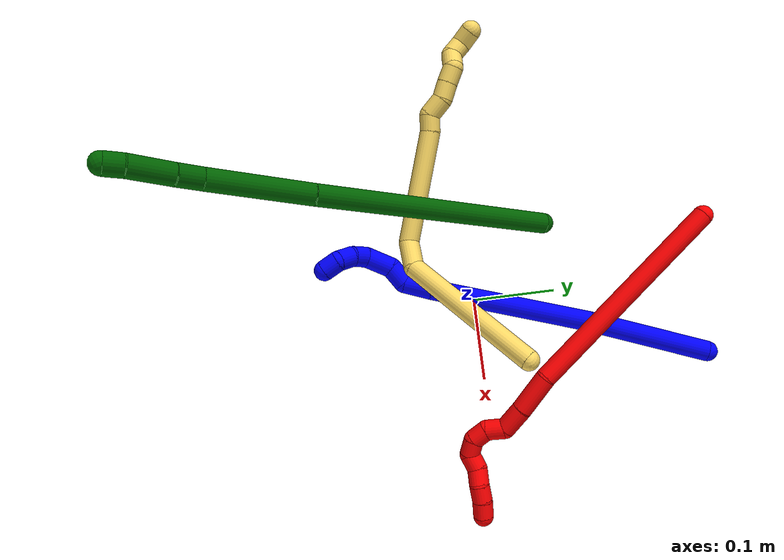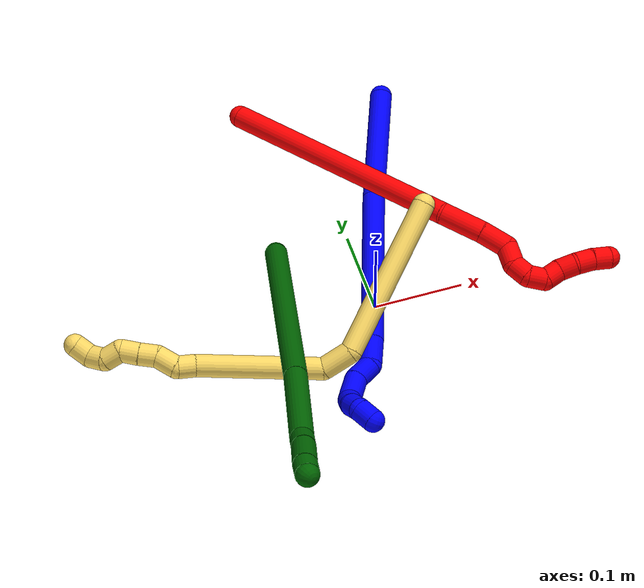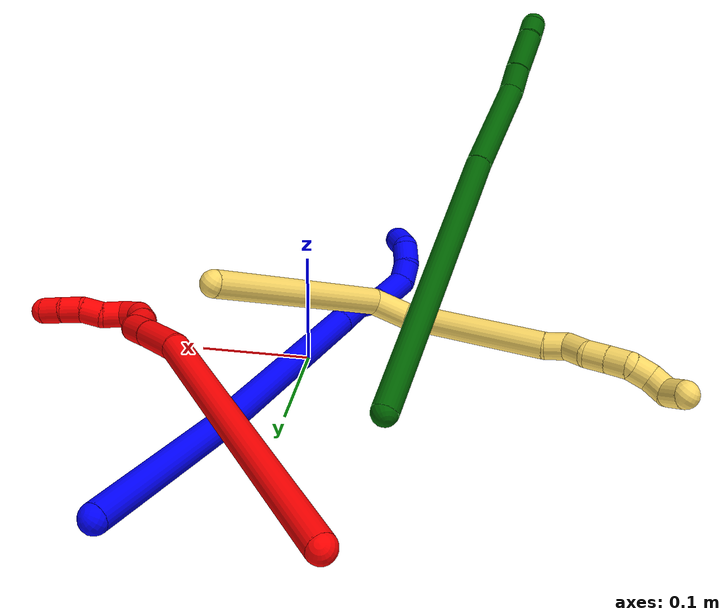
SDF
<sdf version="1.7">
 <world name="default">
  <model name="1">
   <static>0</static>
   <link name="1">
    <collision name="collision-cylinder-e_1_1_4">
     <pose>-0.018529 -0.052572 -0.048535 2.31629 -0.253398 -0.5663</pose>
     <geometry><cylinder><radius>0.0125</radius><length>0.147822</length></cylinder></geometry>
     <surface>
      <friction><ode><mu>1.16</mu><mu2>1.16</mu2><slip1>0</slip1><slip2>0</slip2></ode></friction>
      <contact><ode><kp>1e+06</kp><kd>1</kd><max_vel>0</max_vel><min_depth>0.001</min_depth></ode></contact>
     </surface>
    </collision>
    <visual name="visual-cylinder-e_1_1_4">
     <pose>-0.018529 -0.052572 -0.048535 2.31629 -0.253398 -0.5663</pose>
     <geometry><cylinder><radius>0.0125</radius><length>0.147822</length></cylinder></geometry>
     <material><ambient>0 0 1 1</ambient></material>
    </visual>
    <collision name="collision-cylinder-e_2_4_5">
     <pose>-0.060913 -0.180215 -0.158418 2.25592 -0.241266 -0.5005</pose>
     <geometry><cylinder><radius>0.0125</radius><length>0.199682</length></cylinder></geometry>
     <surface>
      <friction><ode><mu>1.16</mu><mu2>1.16</mu2><slip1>0</slip1><slip2>0</slip2></ode></friction>
      <contact><ode><kp>1e+06</kp><kd>1</kd><max_vel>0</max_vel><min_depth>0.001</min_depth></ode></contact>
     </surface>
    </collision>
    <visual name="visual-cylinder-e_2_4_5">
     <pose>-0.060913 -0.180215 -0.158418 2.25592 -0.241266 -0.5005</pose>
     <geometry><cylinder><radius>0.0125</radius><length>0.199682</length></cylinder></geometry>
     <material><ambient>0 0 1 1</ambient></material>
    </visual>
    <collision name="collision-cylinder-e_3_5_6">
     <pose>-0.09048 -0.268298 -0.229603 2.2182 -0.336804 -0.658503</pose>
     <geometry><cylinder><radius>0.0125</radius><length>0.034566</length></cylinder></geometry>
     <surface>
      <friction><ode><mu>1.16</mu><mu2>1.16</mu2><slip1>0</slip1><slip2>0</slip2></ode></friction>
      <contact><ode><kp>1e+06</kp><kd>1</kd><max_vel>0</max_vel><min_depth>0.001</min_depth></ode></contact>
     </surface>
    </collision>
    <visual name="visual-cylinder-e_3_5_6">
     <pose>-0.09048 -0.268298 -0.229603 2.2182 -0.336804 -0.658503</pose>
     <geometry><cylinder><radius>0.0125</radius><length>0.034566</length></cylinder></geometry>
     <material><ambient>0 0 1 1</ambient></material>
    </visual>
    <collision name="collision-cylinder-e_4_6_7">
     <pose>-0.104538 -0.284527 -0.247746 2.77196 -0.75288 -2.25806</pose>
     <geometry><cylinder><radius>0.0125</radius><length>0.024413</length></cylinder></geometry>
     <surface>
      <friction><ode><mu>1.16</mu><mu2>1.16</mu2><slip1>0</slip1><slip2>0</slip2></ode></friction>
      <contact><ode><kp>1e+06</kp><kd>1</kd><max_vel>0</max_vel><min_depth>0.001</min_depth></ode></contact>
     </surface>
    </collision>
    <visual name="visual-cylinder-e_4_6_7">
     <pose>-0.104538 -0.284527 -0.247746 2.77196 -0.75288 -2.25806</pose>
     <geometry><cylinder><radius>0.0125</radius><length>0.024413</length></cylinder></geometry>
     <material><ambient>0 0 1 1</ambient></material>
    </visual>
    <collision name="collision-cylinder-e_5_7_8">
     <pose>-0.121306 -0.29919 -0.264925 2.23027 -0.52679 -1.00608</pose>
     <geometry><cylinder><radius>0.0125</radius><length>0.033505</length></cylinder></geometry>
     <surface>
      <friction><ode><mu>1.16</mu><mu2>1.16</mu2><slip1>0</slip1><slip2>0</slip2></ode></friction>
      <contact><ode><kp>1e+06</kp><kd>1</kd><max_vel>0</max_vel><min_depth>0.001</min_depth></ode></contact>
     </surface>
    </collision>
    <visual name="visual-cylinder-e_5_7_8">
     <pose>-0.121306 -0.29919 -0.264925 2.23027 -0.52679 -1.00608</pose>
     <geometry><cylinder><radius>0.0125</radius><length>0.033505</length></cylinder></geometry>
     <material><ambient>0 0 1 1</ambient></material>
    </visual>
    <collision name="collision-cylinder-e_6_8_9">
     <pose>-0.134752 -0.319279 -0.273424 1.52764 -0.526018 -0.504743</pose>
     <geometry><cylinder><radius>0.0125</radius><length>0.02001</length></cylinder></geometry>
     <surface>
      <friction><ode><mu>1.16</mu><mu2>1.16</mu2><slip1>0</slip1><slip2>0</slip2></ode></friction>
      <contact><ode><kp>1e+06</kp><kd>1</kd><max_vel>0</max_vel><min_depth>0.001</min_depth></ode></contact>
     </surface>
    </collision>
    <visual name="visual-cylinder-e_6_8_9">
     <pose>-0.134752 -0.319279 -0.273424 1.52764 -0.526018 -0.504743</pose>
     <geometry><cylinder><radius>0.0125</radius><length>0.02001</length></cylinder></geometry>
     <material><ambient>0 0 1 1</ambient></material>
    </visual>
    <collision name="collision-cylinder-e_7_9_10">
     <pose>-0.141844 -0.337614 -0.271698 1.43206 -0.208351 -0.181439</pose>
     <geometry><cylinder><radius>0.0125</radius><length>0.020001</length></cylinder></geometry>
     <surface>
      <friction><ode><mu>1.16</mu><mu2>1.16</mu2><slip1>0</slip1><slip2>0</slip2></ode></friction>
      <contact><ode><kp>1e+06</kp><kd>1</kd><max_vel>0</max_vel><min_depth>0.001</min_depth></ode></contact>
     </surface>
    </collision>
    <visual name="visual-cylinder-e_7_9_10">
     <pose>-0.141844 -0.337614 -0.271698 1.43206 -0.208351 -0.181439</pose>
     <geometry><cylinder><radius>0.0125</radius><length>0.020001</length></cylinder></geometry>
     <material><ambient>0 0 1 1</ambient></material>
    </visual>
    <collision name="collision-cylinder-e_8_10_2">
     <pose>-0.140117 -0.356422 -0.271916 1.74142 0.38936 0.459834</pose>
     <geometry><cylinder><radius>0.0125</radius><length>0.020001</length></cylinder></geometry>
     <surface>
      <friction><ode><mu>1.16</mu><mu2>1.16</mu2><slip1>0</slip1><slip2>0</slip2></ode></friction>
      <contact><ode><kp>1e+06</kp><kd>1</kd><max_vel>0</max_vel><min_depth>0.001</min_depth></ode></contact>
     </surface>
    </collision>
    <visual name="visual-cylinder-e_8_10_2">
     <pose>-0.140117 -0.356422 -0.271916 1.74142 0.38936 0.459834</pose>
     <geometry><cylinder><radius>0.0125</radius><length>0.020001</length></cylinder></geometry>
     <material><ambient>0 0 1 1</ambient></material>
    </visual>
    <collision name="collision-sphere-2">
     <pose>-0.136321 -0.36554 -0.273487 0 -0 0</pose>
     <geometry><sphere><radius>0.0125</radius></sphere></geometry>
     <surface>
      <friction><ode><mu>1.16</mu><mu2>1.16</mu2><slip1>0</slip1><slip2>0</slip2></ode></friction>
      <contact><ode><kp>1e+06</kp><kd>1</kd><max_vel>0</max_vel><min_depth>0.001</min_depth></ode></contact>
     </surface>
    </collision>
    <visual name="visual-sphere-2">
     <pose>-0.136321 -0.36554 -0.273487 0 -0 0</pose>
     <geometry><sphere><radius>0.0125</radius></sphere></geometry>
     <material><ambient>0 0 1 1</ambient></material>
    </visual>
    <collision name="collision-sphere-10">
     <pose>-0.143913 -0.347304 -0.270345 0 -0 0</pose>
     <geometry><sphere><radius>0.0125</radius></sphere></geometry>
     <surface>
      <friction><ode><mu>1.16</mu><mu2>1.16</mu2><slip1>0</slip1><slip2>0</slip2></ode></friction>
      <contact><ode><kp>1e+06</kp><kd>1</kd><max_vel>0</max_vel><min_depth>0.001</min_depth></ode></contact>
     </surface>
    </collision>
    <visual name="visual-sphere-10">
     <pose>-0.143913 -0.347304 -0.270345 0 -0 0</pose>
     <geometry><sphere><radius>0.0125</radius></sphere></geometry>
     <material><ambient>0 0 1 1</ambient></material>
    </visual>
    <collision name="collision-sphere-9">
     <pose>-0.139776 -0.327924 -0.273051 0 -0 0</pose>
     <geometry><sphere><radius>0.0125</radius></sphere></geometry>
     <surface>
      <friction><ode><mu>1.16</mu><mu2>1.16</mu2><slip1>0</slip1><slip2>0</slip2></ode></friction>
      <contact><ode><kp>1e+06</kp><kd>1</kd><max_vel>0</max_vel><min_depth>0.001</min_depth></ode></contact>
     </surface>
    </collision>
    <visual name="visual-sphere-9">
     <pose>-0.139776 -0.327924 -0.273051 0 -0 0</pose>
     <geometry><sphere><radius>0.0125</radius></sphere></geometry>
     <material><ambient>0 0 1 1</ambient></material>
    </visual>
    <collision name="collision-sphere-4">
     <pose>-0.037058 -0.105144 -0.097071 0 -0 0</pose>
     <geometry><sphere><radius>0.0125</radius></sphere></geometry>
     <surface>
      <friction><ode><mu>1.16</mu><mu2>1.16</mu2><slip1>0</slip1><slip2>0</slip2></ode></friction>
      <contact><ode><kp>1e+06</kp><kd>1</kd><max_vel>0</max_vel><min_depth>0.001</min_depth></ode></contact>
     </surface>
    </collision>
    <visual name="visual-sphere-4">
     <pose>-0.037058 -0.105144 -0.097071 0 -0 0</pose>
     <geometry><sphere><radius>0.0125</radius></sphere></geometry>
     <material><ambient>0 0 1 1</ambient></material>
    </visual>
    <collision name="collision-sphere-1">
     <geometry><sphere><radius>0.0125</radius></sphere></geometry>
     <surface>
      <friction><ode><mu>1.16</mu><mu2>1.16</mu2><slip1>0</slip1><slip2>0</slip2></ode></friction>
      <contact><ode><kp>1e+06</kp><kd>1</kd><max_vel>0</max_vel><min_depth>0.001</min_depth></ode></contact>
     </surface>
    </collision>
    <visual name="visual-sphere-1">
     <geometry><sphere><radius>0.0125</radius></sphere></geometry>
     <material><ambient>0 0 1 1</ambient></material>
    </visual>
    <collision name="collision-sphere-8">
     <pose>-0.129729 -0.310635 -0.273797 0 -0 0</pose>
     <geometry><sphere><radius>0.0125</radius></sphere></geometry>
     <surface>
      <friction><ode><mu>1.16</mu><mu2>1.16</mu2><slip1>0</slip1><slip2>0</slip2></ode></friction>
      <contact><ode><kp>1e+06</kp><kd>1</kd><max_vel>0</max_vel><min_depth>0.001</min_depth></ode></contact>
     </surface>
    </collision>
    <visual name="visual-sphere-8">
     <pose>-0.129729 -0.310635 -0.273797 0 -0 0</pose>
     <geometry><sphere><radius>0.0125</radius></sphere></geometry>
     <material><ambient>0 0 1 1</ambient></material>
    </visual>
    <collision name="collision-sphere-5">
     <pose>-0.084769 -0.255287 -0.219765 0 -0 0</pose>
     <geometry><sphere><radius>0.0125</radius></sphere></geometry>
     <surface>
      <friction><ode><mu>1.16</mu><mu2>1.16</mu2><slip1>0</slip1><slip2>0</slip2></ode></friction>
      <contact><ode><kp>1e+06</kp><kd>1</kd><max_vel>0</max_vel><min_depth>0.001</min_depth></ode></contact>
     </surface>
    </collision>
    <visual name="visual-sphere-5">
     <pose>-0.084769 -0.255287 -0.219765 0 -0 0</pose>
     <geometry><sphere><radius>0.0125</radius></sphere></geometry>
     <material><ambient>0 0 1 1</ambient></material>
    </visual>
    <collision name="collision-sphere-6">
     <pose>-0.096192 -0.28131 -0.239441 0 -0 0</pose>
     <geometry><sphere><radius>0.0125</radius></sphere></geometry>
     <surface>
      <friction><ode><mu>1.16</mu><mu2>1.16</mu2><slip1>0</slip1><slip2>0</slip2></ode></friction>
      <contact><ode><kp>1e+06</kp><kd>1</kd><max_vel>0</max_vel><min_depth>0.001</min_depth></ode></contact>
     </surface>
    </collision>
    <visual name="visual-sphere-6">
     <pose>-0.096192 -0.28131 -0.239441 0 -0 0</pose>
     <geometry><sphere><radius>0.0125</radius></sphere></geometry>
     <material><ambient>0 0 1 1</ambient></material>
    </visual>
    <collision name="collision-sphere-7">
     <pose>-0.112884 -0.287745 -0.256052 0 -0 0</pose>
     <geometry><sphere><radius>0.0125</radius></sphere></geometry>
     <surface>
      <friction><ode><mu>1.16</mu><mu2>1.16</mu2><slip1>0</slip1><slip2>0</slip2></ode></friction>
      <contact><ode><kp>1e+06</kp><kd>1</kd><max_vel>0</max_vel><min_depth>0.001</min_depth></ode></contact>
     </surface>
    </collision>
    <visual name="visual-sphere-7">
     <pose>-0.112884 -0.287745 -0.256052 0 -0 0</pose>
     <geometry><sphere><radius>0.0125</radius></sphere></geometry>
     <material><ambient>0 0 1 1</ambient></material>
    </visual>
    <inertial>
     <pose>-0.065964 -0.180544 -0.156026 0 -0 0</pose>
     <mass>0.5</mass>
     <inertia>
      <ixx>0.000331</ixx>
      <ixy>0</ixy>
      <ixz>0</ixz>
      <iyy>-0.000934</iyy>
      <iyz>0</iyz>
      <izz>0.000925</izz>
     </inertia>
    </inertial>
   </link>
   <pose>0.097172 0.275657 0.016848 -0.483097 0.684025 -0.010634</pose>
  </model>
  <model name="2">
   <static>0</static>
   <link name="2">
    <collision name="collision-cylinder-e_1_1_4">
     <pose>0.083787 -0.086686 -0.066794 2.22731 0.653432 1.20645</pose>
     <geometry><cylinder><radius>0.0125</radius><length>0.275653</length></cylinder></geometry>
     <surface>
      <friction><ode><mu>1.16</mu><mu2>1.16</mu2><slip1>0</slip1><slip2>0</slip2></ode></friction>
      <contact><ode><kp>1e+06</kp><kd>1</kd><max_vel>0</max_vel><min_depth>0.001</min_depth></ode></contact>
     </surface>
    </collision>
    <visual name="visual-cylinder-e_1_1_4">
     <pose>0.083787 -0.086686 -0.066794 2.22731 0.653432 1.20645</pose>
     <geometry><cylinder><radius>0.0125</radius><length>0.275653</length></cylinder></geometry>
     <material><ambient>1 0 0 1</ambient></material>
    </visual>
    <collision name="collision-cylinder-e_2_4_5">
     <pose>0.184751 -0.182997 -0.148008 2.55304 0.780758 1.87197</pose>
     <geometry><cylinder><radius>0.0125</radius><length>0.048812</length></cylinder></geometry>
     <surface>
      <friction><ode><mu>1.16</mu><mu2>1.16</mu2><slip1>0</slip1><slip2>0</slip2></ode></friction>
      <contact><ode><kp>1e+06</kp><kd>1</kd><max_vel>0</max_vel><min_depth>0.001</min_depth></ode></contact>
     </surface>
    </collision>
    <visual name="visual-cylinder-e_2_4_5">
     <pose>0.184751 -0.182997 -0.148008 2.55304 0.780758 1.87197</pose>
     <geometry><cylinder><radius>0.0125</radius><length>0.048812</length></cylinder></geometry>
     <material><ambient>1 0 0 1</ambient></material>
    </visual>
    <collision name="collision-cylinder-e_3_5_6">
     <pose>0.212409 -0.198506 -0.173131 2.6389 0.709194 1.92886</pose>
     <geometry><cylinder><radius>0.0125</radius><length>0.032186</length></cylinder></geometry>
     <surface>
      <friction><ode><mu>1.16</mu><mu2>1.16</mu2><slip1>0</slip1><slip2>0</slip2></ode></friction>
      <contact><ode><kp>1e+06</kp><kd>1</kd><max_vel>0</max_vel><min_depth>0.001</min_depth></ode></contact>
     </surface>
    </collision>
    <visual name="visual-cylinder-e_3_5_6">
     <pose>0.212409 -0.198506 -0.173131 2.6389 0.709194 1.92886</pose>
     <geometry><cylinder><radius>0.0125</radius><length>0.032186</length></cylinder></geometry>
     <material><ambient>1 0 0 1</ambient></material>
    </visual>
    <collision name="collision-cylinder-e_4_6_7">
     <pose>0.222633 -0.211726 -0.192777 2.45462 -0.022142 -0.06189</pose>
     <geometry><cylinder><radius>0.0125</radius><length>0.023141</length></cylinder></geometry>
     <surface>
      <friction><ode><mu>1.16</mu><mu2>1.16</mu2><slip1>0</slip1><slip2>0</slip2></ode></friction>
      <contact><ode><kp>1e+06</kp><kd>1</kd><max_vel>0</max_vel><min_depth>0.001</min_depth></ode></contact>
     </surface>
    </collision>
    <visual name="visual-cylinder-e_4_6_7">
     <pose>0.222633 -0.211726 -0.192777 2.45462 -0.022142 -0.06189</pose>
     <geometry><cylinder><radius>0.0125</radius><length>0.023141</length></cylinder></geometry>
     <material><ambient>1 0 0 1</ambient></material>
    </visual>
    <collision name="collision-cylinder-e_5_7_8">
     <pose>0.227323 -0.224412 -0.208685 2.48659 0.51304 1.31495</pose>
     <geometry><cylinder><radius>0.0125</radius><length>0.020157</length></cylinder></geometry>
     <surface>
      <friction><ode><mu>1.16</mu><mu2>1.16</mu2><slip1>0</slip1><slip2>0</slip2></ode></friction>
      <contact><ode><kp>1e+06</kp><kd>1</kd><max_vel>0</max_vel><min_depth>0.001</min_depth></ode></contact>
     </surface>
    </collision>
    <visual name="visual-cylinder-e_5_7_8">
     <pose>0.227323 -0.224412 -0.208685 2.48659 0.51304 1.31495</pose>
     <geometry><cylinder><radius>0.0125</radius><length>0.020157</length></cylinder></geometry>
     <material><ambient>1 0 0 1</ambient></material>
    </visual>
    <collision name="collision-cylinder-e_6_8_9">
     <pose>0.241085 -0.230886 -0.220245 2.90148 1.07805 2.74354</pose>
     <geometry><cylinder><radius>0.0125</radius><length>0.020009</length></cylinder></geometry>
     <surface>
      <friction><ode><mu>1.16</mu><mu2>1.16</mu2><slip1>0</slip1><slip2>0</slip2></ode></friction>
      <contact><ode><kp>1e+06</kp><kd>1</kd><max_vel>0</max_vel><min_depth>0.001</min_depth></ode></contact>
     </surface>
    </collision>
    <visual name="visual-cylinder-e_6_8_9">
     <pose>0.241085 -0.230886 -0.220245 2.90148 1.07805 2.74354</pose>
     <geometry><cylinder><radius>0.0125</radius><length>0.020009</length></cylinder></geometry>
     <material><ambient>1 0 0 1</ambient></material>
    </visual>
    <collision name="collision-cylinder-e_7_9_10">
     <pose>0.259322 -0.229255 -0.222914 -0.960619 1.22789 -0.703845</pose>
     <geometry><cylinder><radius>0.0125</radius><length>0.020011</length></cylinder></geometry>
     <surface>
      <friction><ode><mu>1.16</mu><mu2>1.16</mu2><slip1>0</slip1><slip2>0</slip2></ode></friction>
      <contact><ode><kp>1e+06</kp><kd>1</kd><max_vel>0</max_vel><min_depth>0.001</min_depth></ode></contact>
     </surface>
    </collision>
    <visual name="visual-cylinder-e_7_9_10">
     <pose>0.259322 -0.229255 -0.222914 -0.960619 1.22789 -0.703845</pose>
     <geometry><cylinder><radius>0.0125</radius><length>0.020011</length></cylinder></geometry>
     <material><ambient>1 0 0 1</ambient></material>
    </visual>
    <collision name="collision-cylinder-e_8_10_11">
     <pose>0.278666 -0.227477 -0.220031 0.797457 1.43368 0.703748</pose>
     <geometry><cylinder><radius>0.0125</radius><length>0.020029</length></cylinder></geometry>
     <surface>
      <friction><ode><mu>1.16</mu><mu2>1.16</mu2><slip1>0</slip1><slip2>0</slip2></ode></friction>
      <contact><ode><kp>1e+06</kp><kd>1</kd><max_vel>0</max_vel><min_depth>0.001</min_depth></ode></contact>
     </surface>
    </collision>
    <visual name="visual-cylinder-e_8_10_11">
     <pose>0.278666 -0.227477 -0.220031 0.797457 1.43368 0.703748</pose>
     <geometry><cylinder><radius>0.0125</radius><length>0.020029</length></cylinder></geometry>
     <material><ambient>1 0 0 1</ambient></material>
    </visual>
    <collision name="collision-cylinder-e_9_11_12">
     <pose>0.298477 -0.227161 -0.219778 -2.06811 1.4228 -1.93324</pose>
     <geometry><cylinder><radius>0.0125</radius><length>0.02</length></cylinder></geometry>
     <surface>
      <friction><ode><mu>1.16</mu><mu2>1.16</mu2><slip1>0</slip1><slip2>0</slip2></ode></friction>
      <contact><ode><kp>1e+06</kp><kd>1</kd><max_vel>0</max_vel><min_depth>0.001</min_depth></ode></contact>
     </surface>
    </collision>
    <visual name="visual-cylinder-e_9_11_12">
     <pose>0.298477 -0.227161 -0.219778 -2.06811 1.4228 -1.93324</pose>
     <geometry><cylinder><radius>0.0125</radius><length>0.02</length></cylinder></geometry>
     <material><ambient>1 0 0 1</ambient></material>
    </visual>
    <collision name="collision-cylinder-e_10_12_2">
     <pose>0.318089 -0.22498 -0.222654 -2.75467 1.33399 -2.65387</pose>
     <geometry><cylinder><radius>0.0125</radius><length>0.02</length></cylinder></geometry>
     <surface>
      <friction><ode><mu>1.16</mu><mu2>1.16</mu2><slip1>0</slip1><slip2>0</slip2></ode></friction>
      <contact><ode><kp>1e+06</kp><kd>1</kd><max_vel>0</max_vel><min_depth>0.001</min_depth></ode></contact>
     </surface>
    </collision>
    <visual name="visual-cylinder-e_10_12_2">
     <pose>0.318089 -0.22498 -0.222654 -2.75467 1.33399 -2.65387</pose>
     <geometry><cylinder><radius>0.0125</radius><length>0.02</length></cylinder></geometry>
     <material><ambient>1 0 0 1</ambient></material>
    </visual>
    <collision name="collision-sphere-2">
     <pose>0.32781 -0.224094 -0.224826 0 -0 0</pose>
     <geometry><sphere><radius>0.0125</radius></sphere></geometry>
     <surface>
      <friction><ode><mu>1.16</mu><mu2>1.16</mu2><slip1>0</slip1><slip2>0</slip2></ode></friction>
      <contact><ode><kp>1e+06</kp><kd>1</kd><max_vel>0</max_vel><min_depth>0.001</min_depth></ode></contact>
     </surface>
    </collision>
    <visual name="visual-sphere-2">
     <pose>0.32781 -0.224094 -0.224826 0 -0 0</pose>
     <geometry><sphere><radius>0.0125</radius></sphere></geometry>
     <material><ambient>1 0 0 1</ambient></material>
    </visual>
    <collision name="collision-sphere-12">
     <pose>0.308368 -0.225865 -0.220481 0 -0 0</pose>
     <geometry><sphere><radius>0.0125</radius></sphere></geometry>
     <surface>
      <friction><ode><mu>1.16</mu><mu2>1.16</mu2><slip1>0</slip1><slip2>0</slip2></ode></friction>
      <contact><ode><kp>1e+06</kp><kd>1</kd><max_vel>0</max_vel><min_depth>0.001</min_depth></ode></contact>
     </surface>
    </collision>
    <visual name="visual-sphere-12">
     <pose>0.308368 -0.225865 -0.220481 0 -0 0</pose>
     <geometry><sphere><radius>0.0125</radius></sphere></geometry>
     <material><ambient>1 0 0 1</ambient></material>
    </visual>
    <collision name="collision-sphere-11">
     <pose>0.288586 -0.228457 -0.219074 0 -0 0</pose>
     <geometry><sphere><radius>0.0125</radius></sphere></geometry>
     <surface>
      <friction><ode><mu>1.16</mu><mu2>1.16</mu2><slip1>0</slip1><slip2>0</slip2></ode></friction>
      <contact><ode><kp>1e+06</kp><kd>1</kd><max_vel>0</max_vel><min_depth>0.001</min_depth></ode></contact>
     </surface>
    </collision>
    <visual name="visual-sphere-11">
     <pose>0.288586 -0.228457 -0.219074 0 -0 0</pose>
     <geometry><sphere><radius>0.0125</radius></sphere></geometry>
     <material><ambient>1 0 0 1</ambient></material>
    </visual>
    <collision name="collision-sphere-10">
     <pose>0.268746 -0.226498 -0.220987 0 -0 0</pose>
     <geometry><sphere><radius>0.0125</radius></sphere></geometry>
     <surface>
      <friction><ode><mu>1.16</mu><mu2>1.16</mu2><slip1>0</slip1><slip2>0</slip2></ode></friction>
      <contact><ode><kp>1e+06</kp><kd>1</kd><max_vel>0</max_vel><min_depth>0.001</min_depth></ode></contact>
     </surface>
    </collision>
    <visual name="visual-sphere-10">
     <pose>0.268746 -0.226498 -0.220987 0 -0 0</pose>
     <geometry><sphere><radius>0.0125</radius></sphere></geometry>
     <material><ambient>1 0 0 1</ambient></material>
    </visual>
    <collision name="collision-sphere-9">
     <pose>0.249899 -0.232012 -0.224842 0 -0 0</pose>
     <geometry><sphere><radius>0.0125</radius></sphere></geometry>
     <surface>
      <friction><ode><mu>1.16</mu><mu2>1.16</mu2><slip1>0</slip1><slip2>0</slip2></ode></friction>
      <contact><ode><kp>1e+06</kp><kd>1</kd><max_vel>0</max_vel><min_depth>0.001</min_depth></ode></contact>
     </surface>
    </collision>
    <visual name="visual-sphere-9">
     <pose>0.249899 -0.232012 -0.224842 0 -0 0</pose>
     <geometry><sphere><radius>0.0125</radius></sphere></geometry>
     <material><ambient>1 0 0 1</ambient></material>
    </visual>
    <collision name="collision-sphere-4">
     <pose>0.167573 -0.173372 -0.133588 0 -0 0</pose>
     <geometry><sphere><radius>0.0125</radius></sphere></geometry>
     <surface>
      <friction><ode><mu>1.16</mu><mu2>1.16</mu2><slip1>0</slip1><slip2>0</slip2></ode></friction>
      <contact><ode><kp>1e+06</kp><kd>1</kd><max_vel>0</max_vel><min_depth>0.001</min_depth></ode></contact>
     </surface>
    </collision>
    <visual name="visual-sphere-4">
     <pose>0.167573 -0.173372 -0.133588 0 -0 0</pose>
     <geometry><sphere><radius>0.0125</radius></sphere></geometry>
     <material><ambient>1 0 0 1</ambient></material>
    </visual>
    <collision name="collision-sphere-1">
     <geometry><sphere><radius>0.0125</radius></sphere></geometry>
     <surface>
      <friction><ode><mu>1.16</mu><mu2>1.16</mu2><slip1>0</slip1><slip2>0</slip2></ode></friction>
      <contact><ode><kp>1e+06</kp><kd>1</kd><max_vel>0</max_vel><min_depth>0.001</min_depth></ode></contact>
     </surface>
    </collision>
    <visual name="visual-sphere-1">
     <geometry><sphere><radius>0.0125</radius></sphere></geometry>
     <material><ambient>1 0 0 1</ambient></material>
    </visual>
    <collision name="collision-sphere-8">
     <pose>0.23227 -0.229761 -0.215648 0 -0 0</pose>
     <geometry><sphere><radius>0.0125</radius></sphere></geometry>
     <surface>
      <friction><ode><mu>1.16</mu><mu2>1.16</mu2><slip1>0</slip1><slip2>0</slip2></ode></friction>
      <contact><ode><kp>1e+06</kp><kd>1</kd><max_vel>0</max_vel><min_depth>0.001</min_depth></ode></contact>
     </surface>
    </collision>
    <visual name="visual-sphere-8">
     <pose>0.23227 -0.229761 -0.215648 0 -0 0</pose>
     <geometry><sphere><radius>0.0125</radius></sphere></geometry>
     <material><ambient>1 0 0 1</ambient></material>
    </visual>
    <collision name="collision-sphere-5">
     <pose>0.201928 -0.192622 -0.162429 0 -0 0</pose>
     <geometry><sphere><radius>0.0125</radius></sphere></geometry>
     <surface>
      <friction><ode><mu>1.16</mu><mu2>1.16</mu2><slip1>0</slip1><slip2>0</slip2></ode></friction>
      <contact><ode><kp>1e+06</kp><kd>1</kd><max_vel>0</max_vel><min_depth>0.001</min_depth></ode></contact>
     </surface>
    </collision>
    <visual name="visual-sphere-5">
     <pose>0.201928 -0.192622 -0.162429 0 -0 0</pose>
     <geometry><sphere><radius>0.0125</radius></sphere></geometry>
     <material><ambient>1 0 0 1</ambient></material>
    </visual>
    <collision name="collision-sphere-6">
     <pose>0.222889 -0.20439 -0.183833 0 -0 0</pose>
     <geometry><sphere><radius>0.0125</radius></sphere></geometry>
     <surface>
      <friction><ode><mu>1.16</mu><mu2>1.16</mu2><slip1>0</slip1><slip2>0</slip2></ode></friction>
      <contact><ode><kp>1e+06</kp><kd>1</kd><max_vel>0</max_vel><min_depth>0.001</min_depth></ode></contact>
     </surface>
    </collision>
    <visual name="visual-sphere-6">
     <pose>0.222889 -0.20439 -0.183833 0 -0 0</pose>
     <geometry><sphere><radius>0.0125</radius></sphere></geometry>
     <material><ambient>1 0 0 1</ambient></material>
    </visual>
    <collision name="collision-sphere-7">
     <pose>0.222376 -0.219063 -0.201721 0 -0 0</pose>
     <geometry><sphere><radius>0.0125</radius></sphere></geometry>
     <surface>
      <friction><ode><mu>1.16</mu><mu2>1.16</mu2><slip1>0</slip1><slip2>0</slip2></ode></friction>
      <contact><ode><kp>1e+06</kp><kd>1</kd><max_vel>0</max_vel><min_depth>0.001</min_depth></ode></contact>
     </surface>
    </collision>
    <visual name="visual-sphere-7">
     <pose>0.222376 -0.219063 -0.201721 0 -0 0</pose>
     <geometry><sphere><radius>0.0125</radius></sphere></geometry>
     <material><ambient>1 0 0 1</ambient></material>
    </visual>
    <inertial>
     <pose>0.153222 -0.142893 -0.124 0 -0 0</pose>
     <mass>0.5</mass>
     <inertia><ixx>0.001835</ixx><ixy>0</ixy><ixz>0</ixz><iyy>0.001721</iyy><iyz>0</iyz><izz>9e-06</izz></inertia>
    </inertial>
   </link>
   <pose>-0.068388 0.288503 0.025147 -0.680235 -0.063992 0.014559</pose>
  </model>
  <model name="5">
   <static>0</static>
   <link name="5">
    <collision name="collision-cylinder-e_1_1_4">
     <pose>-0.06317 -0.064404 0.011119 1.39984 -0.768392 -0.656322</pose>
     <geometry><cylinder><radius>0.0125</radius><length>0.18179</length></cylinder></geometry>
     <surface>
      <friction><ode><mu>1.16</mu><mu2>1.16</mu2><slip1>0</slip1><slip2>0</slip2></ode></friction>
      <contact><ode><kp>1e+06</kp><kd>1</kd><max_vel>0</max_vel><min_depth>0.001</min_depth></ode></contact>
     </surface>
    </collision>
    <visual name="visual-cylinder-e_1_1_4">
     <pose>-0.06317 -0.064404 0.011119 1.39984 -0.768392 -0.656322</pose>
     <geometry><cylinder><radius>0.0125</radius><length>0.18179</length></cylinder></geometry>
     <material><ambient>1 0.858824 0.4 1</ambient></material>
    </visual>
    <collision name="collision-cylinder-e_2_4_5">
     <pose>-0.143402 -0.131501 0.024461 0.880683 -1.36882 -0.734129</pose>
     <geometry><cylinder><radius>0.0125</radius><length>0.034831</length></cylinder></geometry>
     <surface>
      <friction><ode><mu>1.16</mu><mu2>1.16</mu2><slip1>0</slip1><slip2>0</slip2></ode></friction>
      <contact><ode><kp>1e+06</kp><kd>1</kd><max_vel>0</max_vel><min_depth>0.001</min_depth></ode></contact>
     </surface>
    </collision>
    <visual name="visual-cylinder-e_2_4_5">
     <pose>-0.143402 -0.131501 0.024461 0.880683 -1.36882 -0.734129</pose>
     <geometry><cylinder><radius>0.0125</radius><length>0.034831</length></cylinder></geometry>
     <material><ambient>1 0.858824 0.4 1</ambient></material>
    </visual>
    <collision name="collision-cylinder-e_3_5_6">
     <pose>-0.217586 -0.113217 0.059345 -0.570968 -0.973935 0.308351</pose>
     <geometry><cylinder><radius>0.0125</radius><length>0.138126</length></cylinder></geometry>
     <surface>
      <friction><ode><mu>1.16</mu><mu2>1.16</mu2><slip1>0</slip1><slip2>0</slip2></ode></friction>
      <contact><ode><kp>1e+06</kp><kd>1</kd><max_vel>0</max_vel><min_depth>0.001</min_depth></ode></contact>
     </surface>
    </collision>
    <visual name="visual-cylinder-e_3_5_6">
     <pose>-0.217586 -0.113217 0.059345 -0.570968 -0.973935 0.308351</pose>
     <geometry><cylinder><radius>0.0125</radius><length>0.138126</length></cylinder></geometry>
     <material><ambient>1 0.858824 0.4 1</ambient></material>
    </visual>
    <collision name="collision-cylinder-e_4_6_7">
     <pose>-0.28282 -0.091158 0.098059 -0.176517 -0.922111 0.087859</pose>
     <geometry><cylinder><radius>0.0125</radius><length>0.02036</length></cylinder></geometry>
     <surface>
      <friction><ode><mu>1.16</mu><mu2>1.16</mu2><slip1>0</slip1><slip2>0</slip2></ode></friction>
      <contact><ode><kp>1e+06</kp><kd>1</kd><max_vel>0</max_vel><min_depth>0.001</min_depth></ode></contact>
     </surface>
    </collision>
    <visual name="visual-cylinder-e_4_6_7">
     <pose>-0.28282 -0.091158 0.098059 -0.176517 -0.922111 0.087859</pose>
     <geometry><cylinder><radius>0.0125</radius><length>0.02036</length></cylinder></geometry>
     <material><ambient>1 0.858824 0.4 1</ambient></material>
    </visual>
    <collision name="collision-cylinder-e_5_7_8">
     <pose>-0.297808 -0.08111 0.108742 -1.09437 -0.598082 0.371312</pose>
     <geometry><cylinder><radius>0.0125</radius><length>0.024424</length></cylinder></geometry>
     <surface>
      <friction><ode><mu>1.16</mu><mu2>1.16</mu2><slip1>0</slip1><slip2>0</slip2></ode></friction>
      <contact><ode><kp>1e+06</kp><kd>1</kd><max_vel>0</max_vel><min_depth>0.001</min_depth></ode></contact>
     </surface>
    </collision>
    <visual name="visual-cylinder-e_5_7_8">
     <pose>-0.297808 -0.08111 0.108742 -1.09437 -0.598082 0.371312</pose>
     <geometry><cylinder><radius>0.0125</radius><length>0.024424</length></cylinder></geometry>
     <material><ambient>1 0.858824 0.4 1</ambient></material>
    </visual>
    <collision name="collision-cylinder-e_6_8_9">
     <pose>-0.312652 -0.068037 0.117939 -0.731849 -0.914096 0.372512</pose>
     <geometry><cylinder><radius>0.0125</radius><length>0.02012</length></cylinder></geometry>
     <surface>
      <friction><ode><mu>1.16</mu><mu2>1.16</mu2><slip1>0</slip1><slip2>0</slip2></ode></friction>
      <contact><ode><kp>1e+06</kp><kd>1</kd><max_vel>0</max_vel><min_depth>0.001</min_depth></ode></contact>
     </surface>
    </collision>
    <visual name="visual-cylinder-e_6_8_9">
     <pose>-0.312652 -0.068037 0.117939 -0.731849 -0.914096 0.372512</pose>
     <geometry><cylinder><radius>0.0125</radius><length>0.02012</length></cylinder></geometry>
     <material><ambient>1 0.858824 0.4 1</ambient></material>
    </visual>
    <collision name="collision-cylinder-e_7_9_10">
     <pose>-0.328301 -0.059199 0.126936 -0.818862 -0.869863 0.3979</pose>
     <geometry><cylinder><radius>0.0125</radius><length>0.0201</length></cylinder></geometry>
     <surface>
      <friction><ode><mu>1.16</mu><mu2>1.16</mu2><slip1>0</slip1><slip2>0</slip2></ode></friction>
      <contact><ode><kp>1e+06</kp><kd>1</kd><max_vel>0</max_vel><min_depth>0.001</min_depth></ode></contact>
     </surface>
    </collision>
    <visual name="visual-cylinder-e_7_9_10">
     <pose>-0.328301 -0.059199 0.126936 -0.818862 -0.869863 0.3979</pose>
     <geometry><cylinder><radius>0.0125</radius><length>0.0201</length></cylinder></geometry>
     <material><ambient>1 0.858824 0.4 1</ambient></material>
    </visual>
    <collision name="collision-cylinder-e_8_10_11">
     <pose>-0.346061 -0.055258 0.131837 1.03185 -1.47938 -0.955181</pose>
     <geometry><cylinder><radius>0.0125</radius><length>0.020244</length></cylinder></geometry>
     <surface>
      <friction><ode><mu>1.16</mu><mu2>1.16</mu2><slip1>0</slip1><slip2>0</slip2></ode></friction>
      <contact><ode><kp>1e+06</kp><kd>1</kd><max_vel>0</max_vel><min_depth>0.001</min_depth></ode></contact>
     </surface>
    </collision>
    <visual name="visual-cylinder-e_8_10_11">
     <pose>-0.346061 -0.055258 0.131837 1.03185 -1.47938 -0.955181</pose>
     <geometry><cylinder><radius>0.0125</radius><length>0.020244</length></cylinder></geometry>
     <material><ambient>1 0.858824 0.4 1</ambient></material>
    </visual>
    <collision name="collision-cylinder-e_9_11_12">
     <pose>-0.36403 -0.049916 0.132671 -1.51226 -0.908964 0.863596</pose>
     <geometry><cylinder><radius>0.0125</radius><length>0.020001</length></cylinder></geometry>
     <surface>
      <friction><ode><mu>1.16</mu><mu2>1.16</mu2><slip1>0</slip1><slip2>0</slip2></ode></friction>
      <contact><ode><kp>1e+06</kp><kd>1</kd><max_vel>0</max_vel><min_depth>0.001</min_depth></ode></contact>
     </surface>
    </collision>
    <visual name="visual-cylinder-e_9_11_12">
     <pose>-0.36403 -0.049916 0.132671 -1.51226 -0.908964 0.863596</pose>
     <geometry><cylinder><radius>0.0125</radius><length>0.020001</length></cylinder></geometry>
     <material><ambient>1 0.858824 0.4 1</ambient></material>
    </visual>
    <collision name="collision-cylinder-e_10_12_2">
     <pose>-0.37603 -0.036501 0.138521 -0.924556 -0.423581 0.213465</pose>
     <geometry><cylinder><radius>0.0125</radius><length>0.020003</length></cylinder></geometry>
     <surface>
      <friction><ode><mu>1.16</mu><mu2>1.16</mu2><slip1>0</slip1><slip2>0</slip2></ode></friction>
      <contact><ode><kp>1e+06</kp><kd>1</kd><max_vel>0</max_vel><min_depth>0.001</min_depth></ode></contact>
     </surface>
    </collision>
    <visual name="visual-cylinder-e_10_12_2">
     <pose>-0.37603 -0.036501 0.138521 -0.924556 -0.423581 0.213465</pose>
     <geometry><cylinder><radius>0.0125</radius><length>0.020003</length></cylinder></geometry>
     <material><ambient>1 0.858824 0.4 1</ambient></material>
    </visual>
    <collision name="collision-sphere-2">
     <pose>-0.380141 -0.029222 0.144012 0 -0 0</pose>
     <geometry><sphere><radius>0.0125</radius></sphere></geometry>
     <surface>
      <friction><ode><mu>1.16</mu><mu2>1.16</mu2><slip1>0</slip1><slip2>0</slip2></ode></friction>
      <contact><ode><kp>1e+06</kp><kd>1</kd><max_vel>0</max_vel><min_depth>0.001</min_depth></ode></contact>
     </surface>
    </collision>
    <visual name="visual-sphere-2">
     <pose>-0.380141 -0.029222 0.144012 0 -0 0</pose>
     <geometry><sphere><radius>0.0125</radius></sphere></geometry>
     <material><ambient>1 0.858824 0.4 1</ambient></material>
    </visual>
    <collision name="collision-sphere-12">
     <pose>-0.371919 -0.043781 0.133031 0 -0 0</pose>
     <geometry><sphere><radius>0.0125</radius></sphere></geometry>
     <surface>
      <friction><ode><mu>1.16</mu><mu2>1.16</mu2><slip1>0</slip1><slip2>0</slip2></ode></friction>
      <contact><ode><kp>1e+06</kp><kd>1</kd><max_vel>0</max_vel><min_depth>0.001</min_depth></ode></contact>
     </surface>
    </collision>
    <visual name="visual-sphere-12">
     <pose>-0.371919 -0.043781 0.133031 0 -0 0</pose>
     <geometry><sphere><radius>0.0125</radius></sphere></geometry>
     <material><ambient>1 0.858824 0.4 1</ambient></material>
    </visual>
    <collision name="collision-sphere-11">
     <pose>-0.356141 -0.056051 0.132312 0 -0 0</pose>
     <geometry><sphere><radius>0.0125</radius></sphere></geometry>
     <surface>
      <friction><ode><mu>1.16</mu><mu2>1.16</mu2><slip1>0</slip1><slip2>0</slip2></ode></friction>
      <contact><ode><kp>1e+06</kp><kd>1</kd><max_vel>0</max_vel><min_depth>0.001</min_depth></ode></contact>
     </surface>
    </collision>
    <visual name="visual-sphere-11">
     <pose>-0.356141 -0.056051 0.132312 0 -0 0</pose>
     <geometry><sphere><radius>0.0125</radius></sphere></geometry>
     <material><ambient>1 0.858824 0.4 1</ambient></material>
    </visual>
    <collision name="collision-sphere-10">
     <pose>-0.335981 -0.054465 0.131363 0 -0 0</pose>
     <geometry><sphere><radius>0.0125</radius></sphere></geometry>
     <surface>
      <friction><ode><mu>1.16</mu><mu2>1.16</mu2><slip1>0</slip1><slip2>0</slip2></ode></friction>
      <contact><ode><kp>1e+06</kp><kd>1</kd><max_vel>0</max_vel><min_depth>0.001</min_depth></ode></contact>
     </surface>
    </collision>
    <visual name="visual-sphere-10">
     <pose>-0.335981 -0.054465 0.131363 0 -0 0</pose>
     <geometry><sphere><radius>0.0125</radius></sphere></geometry>
     <material><ambient>1 0.858824 0.4 1</ambient></material>
    </visual>
    <collision name="collision-sphere-9">
     <pose>-0.32062 -0.063933 0.122509 0 -0 0</pose>
     <geometry><sphere><radius>0.0125</radius></sphere></geometry>
     <surface>
      <friction><ode><mu>1.16</mu><mu2>1.16</mu2><slip1>0</slip1><slip2>0</slip2></ode></friction>
      <contact><ode><kp>1e+06</kp><kd>1</kd><max_vel>0</max_vel><min_depth>0.001</min_depth></ode></contact>
     </surface>
    </collision>
    <visual name="visual-sphere-9">
     <pose>-0.32062 -0.063933 0.122509 0 -0 0</pose>
     <geometry><sphere><radius>0.0125</radius></sphere></geometry>
     <material><ambient>1 0.858824 0.4 1</ambient></material>
    </visual>
    <collision name="collision-sphere-4">
     <pose>-0.126341 -0.128807 0.022237 0 -0 0</pose>
     <geometry><sphere><radius>0.0125</radius></sphere></geometry>
     <surface>
      <friction><ode><mu>1.16</mu><mu2>1.16</mu2><slip1>0</slip1><slip2>0</slip2></ode></friction>
      <contact><ode><kp>1e+06</kp><kd>1</kd><max_vel>0</max_vel><min_depth>0.001</min_depth></ode></contact>
     </surface>
    </collision>
    <visual name="visual-sphere-4">
     <pose>-0.126341 -0.128807 0.022237 0 -0 0</pose>
     <geometry><sphere><radius>0.0125</radius></sphere></geometry>
     <material><ambient>1 0.858824 0.4 1</ambient></material>
    </visual>
    <collision name="collision-sphere-1">
     <geometry><sphere><radius>0.0125</radius></sphere></geometry>
     <surface>
      <friction><ode><mu>1.16</mu><mu2>1.16</mu2><slip1>0</slip1><slip2>0</slip2></ode></friction>
      <contact><ode><kp>1e+06</kp><kd>1</kd><max_vel>0</max_vel><min_depth>0.001</min_depth></ode></contact>
     </surface>
    </collision>
    <visual name="visual-sphere-1">
     <geometry><sphere><radius>0.0125</radius></sphere></geometry>
     <material><ambient>1 0.858824 0.4 1</ambient></material>
    </visual>
    <collision name="collision-sphere-8">
     <pose>-0.304684 -0.072142 0.11337 0 -0 0</pose>
     <geometry><sphere><radius>0.0125</radius></sphere></geometry>
     <surface>
      <friction><ode><mu>1.16</mu><mu2>1.16</mu2><slip1>0</slip1><slip2>0</slip2></ode></friction>
      <contact><ode><kp>1e+06</kp><kd>1</kd><max_vel>0</max_vel><min_depth>0.001</min_depth></ode></contact>
     </surface>
    </collision>
    <visual name="visual-sphere-8">
     <pose>-0.304684 -0.072142 0.11337 0 -0 0</pose>
     <geometry><sphere><radius>0.0125</radius></sphere></geometry>
     <material><ambient>1 0.858824 0.4 1</ambient></material>
    </visual>
    <collision name="collision-sphere-5">
     <pose>-0.160463 -0.134195 0.026685 0 -0 0</pose>
     <geometry><sphere><radius>0.0125</radius></sphere></geometry>
     <surface>
      <friction><ode><mu>1.16</mu><mu2>1.16</mu2><slip1>0</slip1><slip2>0</slip2></ode></friction>
      <contact><ode><kp>1e+06</kp><kd>1</kd><max_vel>0</max_vel><min_depth>0.001</min_depth></ode></contact>
     </surface>
    </collision>
    <visual name="visual-sphere-5">
     <pose>-0.160463 -0.134195 0.026685 0 -0 0</pose>
     <geometry><sphere><radius>0.0125</radius></sphere></geometry>
     <material><ambient>1 0.858824 0.4 1</ambient></material>
    </visual>
    <collision name="collision-sphere-6">
     <pose>-0.274708 -0.092238 0.092004 0 -0 0</pose>
     <geometry><sphere><radius>0.0125</radius></sphere></geometry>
     <surface>
      <friction><ode><mu>1.16</mu><mu2>1.16</mu2><slip1>0</slip1><slip2>0</slip2></ode></friction>
      <contact><ode><kp>1e+06</kp><kd>1</kd><max_vel>0</max_vel><min_depth>0.001</min_depth></ode></contact>
     </surface>
    </collision>
    <visual name="visual-sphere-6">
     <pose>-0.274708 -0.092238 0.092004 0 -0 0</pose>
     <geometry><sphere><radius>0.0125</radius></sphere></geometry>
     <material><ambient>1 0.858824 0.4 1</ambient></material>
    </visual>
    <collision name="collision-sphere-7">
     <pose>-0.290932 -0.090078 0.104113 0 -0 0</pose>
     <geometry><sphere><radius>0.0125</radius></sphere></geometry>
     <surface>
      <friction><ode><mu>1.16</mu><mu2>1.16</mu2><slip1>0</slip1><slip2>0</slip2></ode></friction>
      <contact><ode><kp>1e+06</kp><kd>1</kd><max_vel>0</max_vel><min_depth>0.001</min_depth></ode></contact>
     </surface>
    </collision>
    <visual name="visual-sphere-7">
     <pose>-0.290932 -0.090078 0.104113 0 -0 0</pose>
     <geometry><sphere><radius>0.0125</radius></sphere></geometry>
     <material><ambient>1 0.858824 0.4 1</ambient></material>
    </visual>
    <inertial>
     <pose>-0.188526 -0.082339 0.057481 0 -0 0</pose>
     <mass>0.5</mass>
     <inertia><ixx>0.000204</ixx><ixy>0</ixy><ixz>0</ixz><iyy>0.00032</iyy><iyz>0</iyz><izz>0.00085</izz></inertia>
    </inertial>
   </link>
   <pose>0.071301 0.05015 0.09397 0.18938 -0.530191 -0.106098</pose>
  </model>
  <model name="6">
   <static>0</static>
   <link name="6">
    <collision name="collision-cylinder-e_1_1_4">
     <pose>0.004297 -0.074339 0.124434 0.53852 0.029634 0.008178</pose>
     <geometry><cylinder><radius>0.0125</radius><length>0.290024</length></cylinder></geometry>
     <surface>
      <friction><ode><mu>1.16</mu><mu2>1.16</mu2><slip1>0</slip1><slip2>0</slip2></ode></friction>
      <contact><ode><kp>1e+06</kp><kd>1</kd><max_vel>0</max_vel><min_depth>0.001</min_depth></ode></contact>
     </surface>
    </collision>
    <visual name="visual-cylinder-e_1_1_4">
     <pose>0.004297 -0.074339 0.124434 0.53852 0.029634 0.008178</pose>
     <geometry><cylinder><radius>0.0125</radius><length>0.290024</length></cylinder></geometry>
     <material><ambient>0 0.392157 0.003922 1</ambient></material>
    </visual>
    <collision name="collision-cylinder-e_2_4_5">
     <pose>0.014528 -0.178041 0.297599 0.54229 0.10393 0.028916</pose>
     <geometry><cylinder><radius>0.0125</radius><length>0.114406</length></cylinder></geometry>
     <surface>
      <friction><ode><mu>1.16</mu><mu2>1.16</mu2><slip1>0</slip1><slip2>0</slip2></ode></friction>
      <contact><ode><kp>1e+06</kp><kd>1</kd><max_vel>0</max_vel><min_depth>0.001</min_depth></ode></contact>
     </surface>
    </collision>
    <visual name="visual-cylinder-e_2_4_5">
     <pose>0.014528 -0.178041 0.297599 0.54229 0.10393 0.028916</pose>
     <geometry><cylinder><radius>0.0125</radius><length>0.114406</length></cylinder></geometry>
     <material><ambient>0 0.392157 0.003922 1</ambient></material>
    </visual>
    <collision name="collision-cylinder-e_3_5_6">
     <pose>0.017847 -0.215445 0.357953 0.605198 -0.182945 -0.057257</pose>
     <geometry><cylinder><radius>0.0125</radius><length>0.028745</length></cylinder></geometry>
     <surface>
      <friction><ode><mu>1.16</mu><mu2>1.16</mu2><slip1>0</slip1><slip2>0</slip2></ode></friction>
      <contact><ode><kp>1e+06</kp><kd>1</kd><max_vel>0</max_vel><min_depth>0.001</min_depth></ode></contact>
     </surface>
    </collision>
    <visual name="visual-cylinder-e_3_5_6">
     <pose>0.017847 -0.215445 0.357953 0.605198 -0.182945 -0.057257</pose>
     <geometry><cylinder><radius>0.0125</radius><length>0.028745</length></cylinder></geometry>
     <material><ambient>0 0.392157 0.003922 1</ambient></material>
    </visual>
    <collision name="collision-cylinder-e_4_6_7">
     <pose>0.012898 -0.23686 0.388533 0.614444 -0.100298 -0.031845</pose>
     <geometry><cylinder><radius>0.0125</radius><length>0.046636</length></cylinder></geometry>
     <surface>
      <friction><ode><mu>1.16</mu><mu2>1.16</mu2><slip1>0</slip1><slip2>0</slip2></ode></friction>
      <contact><ode><kp>1e+06</kp><kd>1</kd><max_vel>0</max_vel><min_depth>0.001</min_depth></ode></contact>
     </surface>
    </collision>
    <visual name="visual-cylinder-e_4_6_7">
     <pose>0.012898 -0.23686 0.388533 0.614444 -0.100298 -0.031845</pose>
     <geometry><cylinder><radius>0.0125</radius><length>0.046636</length></cylinder></geometry>
     <material><ambient>0 0.392157 0.003922 1</ambient></material>
    </visual>
    <collision name="collision-cylinder-e_5_7_2">
     <pose>0.010516 -0.255156 0.416304 0.509126 -0.004704 -0.001224</pose>
     <geometry><cylinder><radius>0.0125</radius><length>0.020189</length></cylinder></geometry>
     <surface>
      <friction><ode><mu>1.16</mu><mu2>1.16</mu2><slip1>0</slip1><slip2>0</slip2></ode></friction>
      <contact><ode><kp>1e+06</kp><kd>1</kd><max_vel>0</max_vel><min_depth>0.001</min_depth></ode></contact>
     </surface>
    </collision>
    <visual name="visual-cylinder-e_5_7_2">
     <pose>0.010516 -0.255156 0.416304 0.509126 -0.004704 -0.001224</pose>
     <geometry><cylinder><radius>0.0125</radius><length>0.020189</length></cylinder></geometry>
     <material><ambient>0 0.392157 0.003922 1</ambient></material>
    </visual>
    <collision name="collision-sphere-2">
     <pose>0.010468 -0.260076 0.425118 0 -0 0</pose>
     <geometry><sphere><radius>0.0125</radius></sphere></geometry>
     <surface>
      <friction><ode><mu>1.16</mu><mu2>1.16</mu2><slip1>0</slip1><slip2>0</slip2></ode></friction>
      <contact><ode><kp>1e+06</kp><kd>1</kd><max_vel>0</max_vel><min_depth>0.001</min_depth></ode></contact>
     </surface>
    </collision>
    <visual name="visual-sphere-2">
     <pose>0.010468 -0.260076 0.425118 0 -0 0</pose>
     <geometry><sphere><radius>0.0125</radius></sphere></geometry>
     <material><ambient>0 0.392157 0.003922 1</ambient></material>
    </visual>
    <collision name="collision-sphere-7">
     <pose>0.010563 -0.250236 0.40749 0 -0 0</pose>
     <geometry><sphere><radius>0.0125</radius></sphere></geometry>
     <surface>
      <friction><ode><mu>1.16</mu><mu2>1.16</mu2><slip1>0</slip1><slip2>0</slip2></ode></friction>
      <contact><ode><kp>1e+06</kp><kd>1</kd><max_vel>0</max_vel><min_depth>0.001</min_depth></ode></contact>
     </surface>
    </collision>
    <visual name="visual-sphere-7">
     <pose>0.010563 -0.250236 0.40749 0 -0 0</pose>
     <geometry><sphere><radius>0.0125</radius></sphere></geometry>
     <material><ambient>0 0.392157 0.003922 1</ambient></material>
    </visual>
    <collision name="collision-sphere-6">
     <pose>0.015233 -0.223485 0.369576 0 -0 0</pose>
     <geometry><sphere><radius>0.0125</radius></sphere></geometry>
     <surface>
      <friction><ode><mu>1.16</mu><mu2>1.16</mu2><slip1>0</slip1><slip2>0</slip2></ode></friction>
      <contact><ode><kp>1e+06</kp><kd>1</kd><max_vel>0</max_vel><min_depth>0.001</min_depth></ode></contact>
     </surface>
    </collision>
    <visual name="visual-sphere-6">
     <pose>0.015233 -0.223485 0.369576 0 -0 0</pose>
     <geometry><sphere><radius>0.0125</radius></sphere></geometry>
     <material><ambient>0 0.392157 0.003922 1</ambient></material>
    </visual>
    <collision name="collision-sphere-5">
     <pose>0.020462 -0.207404 0.346331 0 -0 0</pose>
     <geometry><sphere><radius>0.0125</radius></sphere></geometry>
     <surface>
      <friction><ode><mu>1.16</mu><mu2>1.16</mu2><slip1>0</slip1><slip2>0</slip2></ode></friction>
      <contact><ode><kp>1e+06</kp><kd>1</kd><max_vel>0</max_vel><min_depth>0.001</min_depth></ode></contact>
     </surface>
    </collision>
    <visual name="visual-sphere-5">
     <pose>0.020462 -0.207404 0.346331 0 -0 0</pose>
     <geometry><sphere><radius>0.0125</radius></sphere></geometry>
     <material><ambient>0 0.392157 0.003922 1</ambient></material>
    </visual>
    <collision name="collision-sphere-1">
     <geometry><sphere><radius>0.0125</radius></sphere></geometry>
     <surface>
      <friction><ode><mu>1.16</mu><mu2>1.16</mu2><slip1>0</slip1><slip2>0</slip2></ode></friction>
      <contact><ode><kp>1e+06</kp><kd>1</kd><max_vel>0</max_vel><min_depth>0.001</min_depth></ode></contact>
     </surface>
    </collision>
    <visual name="visual-sphere-1">
     <geometry><sphere><radius>0.0125</radius></sphere></geometry>
     <material><ambient>0 0.392157 0.003922 1</ambient></material>
    </visual>
    <collision name="collision-sphere-4">
     <pose>0.008593 -0.148678 0.248867 0 -0 0</pose>
     <geometry><sphere><radius>0.0125</radius></sphere></geometry>
     <surface>
      <friction><ode><mu>1.16</mu><mu2>1.16</mu2><slip1>0</slip1><slip2>0</slip2></ode></friction>
      <contact><ode><kp>1e+06</kp><kd>1</kd><max_vel>0</max_vel><min_depth>0.001</min_depth></ode></contact>
     </surface>
    </collision>
    <visual name="visual-sphere-4">
     <pose>0.008593 -0.148678 0.248867 0 -0 0</pose>
     <geometry><sphere><radius>0.0125</radius></sphere></geometry>
     <material><ambient>0 0.392157 0.003922 1</ambient></material>
    </visual>
    <inertial>
     <pose>0.00847 -0.128639 0.213899 0 -0 0</pose>
     <mass>0.5</mass>
     <inertia>
      <ixx>0.002207</ixx>
      <ixy>0</ixy>
      <ixz>0</ixz>
      <iyy>0.001878</iyy>
      <iyz>0</iyz>
      <izz>0.001083</izz>
     </inertia>
    </inertial>
   </link>
   <pose>-0.084291 0.096082 0.011498 -0.998399 1.0192 -2.29765</pose>
  </model>
 </world>
</sdf>
